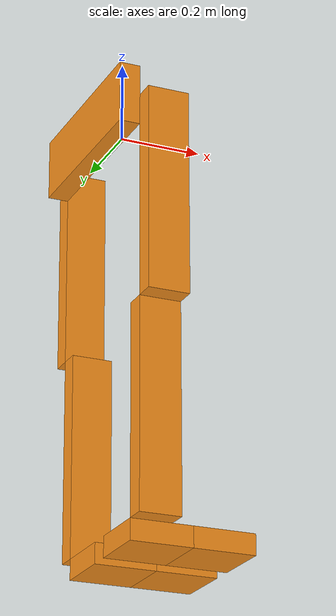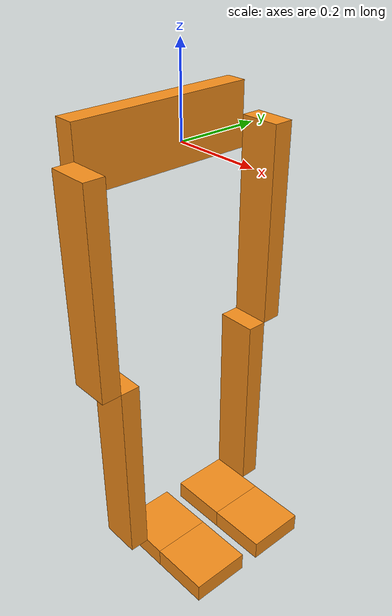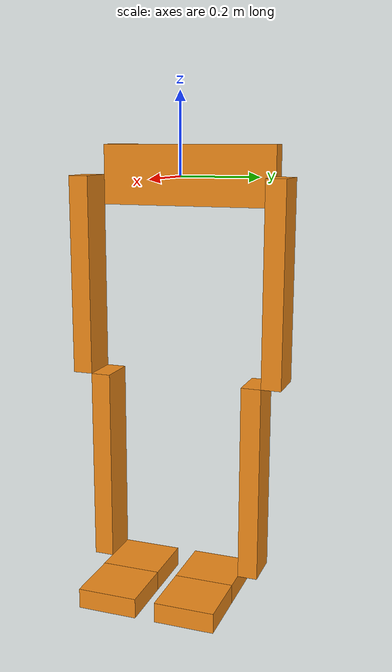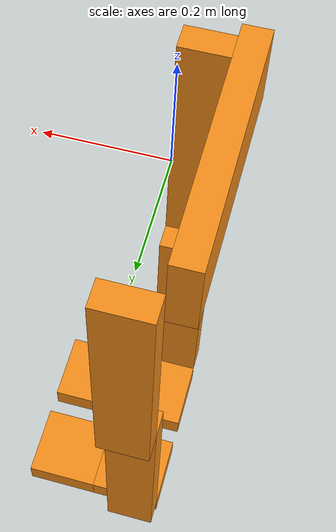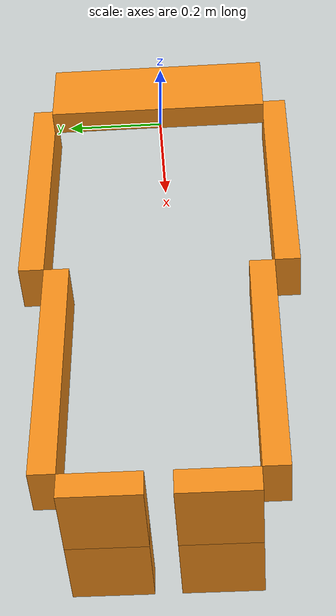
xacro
<?xml version="1.0"?>
<robot name="exoskeleton" xmlns:xacro="http://www.ros.org/wiki/xacro">
  <xacro:property name="PI" value="3.1415926535897931"/>
  <!--waist property-->
  <xacro:property name="waist_mass" value="10" />
  <xacro:property name="waist_length" value="0.45" />
  <xacro:property name="waist_width" value="0.15" />
  <xacro:property name="waist_height" value="0.05" />
  <!--up property-->
  <xacro:property name="up_mass" value="8" />
  <xacro:property name="up_length" value="0.5" />
  <xacro:property name="up_width" value="0.1" />
  <xacro:property name="up_height" value="0.05" />
  <xacro:property name="up_effort" value="500" />
  <xacro:property name="up_lower" value="${-PI/2}" />
  <xacro:property name="up_upper" value="${PI/6}" />
  <xacro:property name="up_maxvel" value="${2*PI}" />
  <!--down property-->
  <xacro:property name="down_mass" value="3" />
  <xacro:property name="down_length" value="0.5" />
  <xacro:property name="down_width" value="0.1" />
  <xacro:property name="down_height" value="0.05" />
  <xacro:property name="down_effort" value="1500" />
  <xacro:property name="down_lower" value="0" />
  <xacro:property name="down_upper" value="${PI*2/3}" />
  <xacro:property name="down_maxvel" value="${PI*3}" />
  <!--foot property-->
  <xacro:property name="foot_back_mass" value="1" />
  <xacro:property name="foot_front_mass" value="0.5" />
  <xacro:property name="foot_back_length" value="0.15" />
  <xacro:property name="foot_front_length" value="0.15" />
  <xacro:property name="foot_width" value="0.15" />
  <xacro:property name="foot_height" value="0.05" />
  <xacro:property name="foot_effort" value="500" />
  <xacro:property name="foot_front_lower" value="${-PI/3}" />
  <xacro:property name="foot_front_upper" value="0" />
  <xacro:property name="foot_back_lower" value="${-PI/18}" />
  <xacro:property name="foot_back_upper" value="${PI/6}" />
  <xacro:property name="foot_maxvel" value="${PI}" />

  <!-- Import all Gazebo-customization elements, including Gazebo colors -->
  <xacro:include filename="$(find exoskeleton)/urdf/robot.gazebo" />

  <link name="waist_link">
    <collision>
      <origin xyz="${-waist_height/2-up_width/2} 0 0" rpy="0 0 0"/>
      <geometry>
	    <box size="${waist_height} ${waist_length} ${waist_width}"/>
      </geometry>
    </collision>
    <visual>
      <origin xyz="${-waist_height/2-up_width/2} 0 0" rpy="0 0 0"/>
      <geometry>
	    <box size="${waist_height} ${waist_length} ${waist_width}"/>
      </geometry>
      <material name="orange"/>
    </visual>
    <inertial>
      <origin xyz="${-waist_height/2-up_width/2} 0 0" rpy="0 0 0"/>
      <mass value="${waist_mass}"/>
      <inertia
	  ixx="${waist_mass / 12.0 * (waist_length*waist_length + waist_width*waist_width)}" ixy="0.0" ixz="0.0"
	  iyy="${waist_mass / 12.0 * (waist_height*waist_height + waist_width*waist_width)}" iyz="0.0"
	  izz="${waist_mass / 12.0 * (waist_height*waist_height + waist_length*waist_length)}"/>
    </inertial>
  </link>

  <joint name="LU_joint" type="revolute">
    <limit
        velocity="${up_maxvel}" effort="${up_effort}" lower="${up_lower}" upper="${up_upper}" />
    <parent link="waist_link"/>
    <child link="LU_link"/>
    <origin xyz="0 ${waist_length/2} 0" rpy="0 0 0"/>
    <axis xyz="0 1 0"/>
    <dynamics damping="0.7"/>
  </joint>
  <link name="LU_link">
    <collision>
      <origin xyz="0 ${up_height/2} ${-(up_length/2)}" rpy="0 0 0"/>
      <geometry>
	    <box size="${up_width} ${up_height} ${up_length}"/>
      </geometry>
    </collision>
    <visual>
      <origin xyz="0 ${up_height/2} ${-(up_length/2)}" rpy="0 0 0"/>
      <geometry>
	    <box size="${up_width} ${up_height} ${up_length}"/>
      </geometry>
      <material name="orange"/>
    </visual>
    <inertial>
      <origin xyz="0 ${up_height/2} ${-(up_length/2)}" rpy="0 0 0"/>
      <mass value="${up_mass}"/>
      <inertia
	  ixx="${up_mass / 12.0 * (up_height*up_height + up_length*up_length)}" ixy="0.0" ixz="0.0"
	  iyy="${up_mass / 12.0 * (up_width*up_width + up_length*up_length)}" iyz="0.0"
	  izz="${up_mass / 12.0 * (up_width*up_width + up_height*up_height)}"/>
    </inertial>
  </link>

  <joint name="RU_joint" type="revolute">
    <limit
        velocity="${up_maxvel}"  effort="${up_effort}" lower="${up_lower}" upper="${up_upper}" />
    <parent link="waist_link"/>
    <child link="RU_link"/>
    <origin xyz="0 ${-(waist_length/2)} 0" rpy="0 0 0"/>
    <axis xyz="0 1 0"/>
    <dynamics damping="0.7"/>
  </joint>
  <link name="RU_link">
    <collision>
      <origin xyz="0 ${-up_height/2} ${-(up_length/2)}" rpy="0 0 0"/>
      <geometry>
	    <box size="${up_width} ${up_height} ${up_length}"/>
      </geometry>
    </collision>
    <visual>
      <origin xyz="0 ${-up_height/2} ${-(up_length/2)}" rpy="0 0 0"/>
      <geometry>
	    <box size="${up_width} ${up_height} ${up_length}"/>
      </geometry>
      <material name="orange"/>
    </visual>
    <inertial>
      <origin xyz="0 ${-up_height/2} ${-(up_length/2)}" rpy="0 0 0"/>
      <mass value="${up_mass}"/>
      <inertia
	  ixx="${up_mass / 12.0 * (up_height*up_height + up_length*up_length)}" ixy="0.0" ixz="0.0"
	  iyy="${up_mass / 12.0 * (up_width*up_width + up_length*up_length)}" iyz="0.0"
	  izz="${up_mass / 12.0 * (up_width*up_width + up_height*up_height)}"/>
    </inertial>
  </link>

  <joint name="LD_joint" type="revolute">
    <limit
        velocity="${down_maxvel}"  effort="${down_effort}" lower="${down_lower}" upper="${down_upper}" />
    <parent link="LU_link"/>
    <child link="LD_link"/>
    <origin xyz="0 0 ${-up_length}" rpy="0 0 0"/>
    <axis xyz="0 1 0"/>
    <dynamics damping="0.7"/>
  </joint>
  <link name="LD_link">
    <collision>
      <origin xyz="0 ${-down_height/2} ${-(down_length/2)}" rpy="0 0 0"/>
      <geometry>
	    <box size="${down_width} ${down_height} ${down_length}"/>
      </geometry>
    </collision>
    <visual>
      <origin xyz="0 ${-down_height/2} ${-(down_length/2)}" rpy="0 0 0"/>
      <geometry>
	    <box size="${down_width} ${down_height} ${down_length}"/>
      </geometry>
      <material name="orange"/>
    </visual>
    <inertial>
      <origin xyz="0 ${-down_height/2} ${-(down_length/2)}" rpy="0 0 0"/>
      <mass value="${down_mass}"/>
      <inertia
	  ixx="${down_mass / 12.0 * (down_height*down_height + down_length*down_length)}" ixy="0.0" ixz="0.0"
	  iyy="${down_mass / 12.0 * (down_width*down_width + down_length*down_length)}" iyz="0.0"
	  izz="${down_mass / 12.0 * (down_width*down_width + down_height*down_height)}"/>
    </inertial>
  </link>

  <joint name="RD_joint" type="revolute">
    <limit
       velocity="${down_maxvel}" effort="${down_effort}" lower="${down_lower}" upper="${down_upper}" />
    <parent link="RU_link"/>
    <child link="RD_link"/>
    <origin xyz="0 0 ${-up_length}" rpy="0 0 0"/>
    <axis xyz="0 1 0"/>
    <dynamics damping="0.7"/>
  </joint>
  <link name="RD_link">
    <collision>
      <origin xyz="0 ${down_height/2} ${-(down_length/2)}" rpy="0 0 0"/>
      <geometry>
	    <box size="${down_width} ${down_height} ${down_length}"/>
      </geometry>
    </collision>
    <visual>
      <origin xyz="0 ${down_height/2} ${-(down_length/2)}" rpy="0 0 0"/>
      <geometry>
	    <box size="${down_width} ${down_height} ${down_length}"/>
      </geometry>
      <material name="orange"/>
    </visual>
    <inertial>
      <origin xyz="0 ${down_height/2} ${-(down_length/2)}" rpy="0 0 0"/>
      <mass value="${down_mass}"/>
      <inertia
	  ixx="${down_mass / 12.0 * (down_height*down_height + down_length*down_length)}" ixy="0.0" ixz="0.0"
	  iyy="${down_mass / 12.0 * (down_width*down_width + down_length*down_length)}" iyz="0.0"
	  izz="${down_mass / 12.0 * (down_width*down_width + down_height*down_height)}"/>
    </inertial>
  </link>

  <joint name="LF_joint" type="revolute">
    <limit
       velocity="${foot_maxvel}" effort="${foot_effort}" lower="${foot_back_lower}" upper="${foot_back_upper}" />
    <parent link="LD_link"/>
    <child link="LF_link"/>
    <origin xyz="0 ${-down_height} ${-down_length}" rpy="0 0 0"/>
    <axis xyz="0 1 0"/>
    <dynamics damping="0.7"/>
  </joint>
  <link name="LF_link">
    <gazebo>
        <self_collide>1</self_collide>
    </gazebo>
    <collision>
      <origin xyz="${foot_back_length/2-down_width/2} ${-foot_width/2} ${-foot_height/2}" rpy="0 0 0"/>
      <geometry>
	    <box size="${foot_back_length} ${foot_width} ${foot_height}"/>
      </geometry>
    </collision>
    <visual>
      <origin xyz="${foot_back_length/2-down_width/2} ${-foot_width/2} ${-foot_height/2}" rpy="0 0 0"/>
      <geometry>
	    <box size="${foot_back_length} ${foot_width} ${foot_height}"/>
      </geometry>
      <material name="orange"/>
    </visual>
    <inertial>
      <origin xyz="${foot_back_length/2-down_width/2} ${-foot_width/2} ${-foot_height/2}" rpy="0 0 0"/>
      <mass value="${foot_back_mass}"/>
      <inertia
	  ixx="${foot_back_mass / 12.0 * (foot_width*foot_width + foot_height*foot_height)}" ixy="0.0" ixz="0.0"
	  iyy="${foot_back_mass / 12.0 * (foot_back_length*foot_back_length + foot_height*foot_height)}" iyz="0.0"
	  izz="${foot_back_mass / 12.0 * (foot_back_length*foot_back_length + foot_width*foot_width)}"/>
    </inertial>
  </link>

  <joint name="RF_joint" type="revolute">
    <limit
       velocity="${foot_maxvel}" effort="${foot_effort}" lower="${foot_back_lower}" upper="${foot_back_upper}" />
    <parent link="RD_link"/>
    <child link="RF_link"/>
    <origin xyz="0 ${down_height} ${-down_length}" rpy="0 0 0"/>
    <axis xyz="0 1 0"/>
    <dynamics damping="0.7"/>
  </joint>
  <link name="RF_link">
    <collision>
      <origin xyz="${foot_back_length/2-down_width/2} ${foot_width/2} ${-foot_height/2}" rpy="0 0 0"/>
      <geometry>
	    <box size="${foot_back_length} ${foot_width} ${foot_height}"/>
      </geometry>
    </collision>
    <visual>
      <origin xyz="${foot_back_length/2-down_width/2} ${foot_width/2} ${-foot_height/2}" rpy="0 0 0"/>
      <geometry>
	    <box size="${foot_back_length} ${foot_width} ${foot_height}"/>
      </geometry>
      <material name="orange"/>
    </visual>
    <inertial>
      <origin xyz="${foot_back_length/2-down_width/2} ${foot_width/2} ${-foot_height/2}" rpy="0 0 0"/>
      <mass value="${foot_back_mass}"/>
      <inertia
	  ixx="${foot_back_mass / 12.0 * (foot_width*foot_width + foot_height*foot_height)}" ixy="0.0" ixz="0.0"
	  iyy="${foot_back_mass / 12.0 * (foot_back_length*foot_back_length + foot_height*foot_height)}" iyz="0.0"
	  izz="${foot_back_mass / 12.0 * (foot_back_length*foot_back_length + foot_width*foot_width)}"/>
    </inertial>
  </link>

  <joint name="LFF_joint" type="revolute">
    <limit
       velocity="${foot_maxvel}" effort="${foot_effort}" lower="${foot_front_lower}" upper="${foot_front_upper}" />
    <parent link="LF_link"/>
    <child link="LFF_link"/>
    <origin xyz="${foot_back_length-down_width/2} 0 0" rpy="0 0 0"/>
    <axis xyz="0 1 0"/>
    <dynamics damping="0.7"/>
  </joint>

  <link name="LFF_link">
    <gazebo>
        <self_collide>1</self_collide>
    </gazebo>
    <collision>
      <origin xyz="${foot_front_length/2} ${-foot_width/2} ${-foot_height/2}" rpy="0 0 0"/>
      <geometry>
	    <box size="${foot_front_length} ${foot_width} ${foot_height}"/>
      </geometry>
    </collision>
    <visual>
      <origin xyz="${foot_front_length/2} ${-foot_width/2} ${-foot_height/2}" rpy="0 0 0"/>
      <geometry>
	    <box size="${foot_front_length} ${foot_width} ${foot_height}"/>
      </geometry>
      <material name="orange"/>
    </visual>
    <inertial>
      <origin xyz="${foot_front_length/2} ${-foot_width/2} ${-foot_height/2}" rpy="0 0 0"/>
      <mass value="${foot_front_mass}"/>
      <inertia
	  ixx="${foot_front_mass / 12.0 * (foot_width*foot_width + foot_height*foot_height)}" ixy="0.0" ixz="0.0"
	  iyy="${foot_front_mass / 12.0 * (foot_front_length*foot_front_length + foot_height*foot_height)}" iyz="0.0"
	  izz="${foot_front_mass / 12.0 * (foot_front_length*foot_front_length + foot_width*foot_width)}"/>
    </inertial>
  </link>

  <joint name="RFF_joint" type="revolute">
    <limit
       velocity="${foot_maxvel}" effort="${foot_effort}" lower="${foot_front_lower}" upper="${foot_front_upper}" />
    <parent link="RF_link"/>
    <child link="RFF_link"/>
    <origin xyz="${foot_back_length-down_width/2} 0 0" rpy="0 0 0"/>
    <axis xyz="0 1 0"/>
    <dynamics damping="0.7"/>
  </joint>

  <link name="RFF_link">
    <gazebo>
        <self_collide>1</self_collide>
    </gazebo>
    <collision>
      <origin xyz="${foot_front_length/2} ${foot_width/2} ${-foot_height/2}" rpy="0 0 0"/>
      <geometry>
	    <box size="${foot_front_length} ${foot_width} ${foot_height}"/>
      </geometry>
    </collision>
    <visual>
      <origin xyz="${foot_front_length/2} ${foot_width/2} ${-foot_height/2}" rpy="0 0 0"/>
      <geometry>
	    <box size="${foot_front_length} ${foot_width} ${foot_height}"/>
      </geometry>
      <material name="orange"/>
    </visual>
    <inertial>
      <origin xyz="${foot_front_length/2} ${foot_width/2} ${-foot_height/2}" rpy="0 0 0"/>
      <mass value="${foot_front_mass}"/>
      <inertia
	  ixx="${foot_front_mass / 12.0 * (foot_width*foot_width + foot_height*foot_height)}" ixy="0.0" ixz="0.0"
	  iyy="${foot_front_mass / 12.0 * (foot_front_length*foot_front_length + foot_height*foot_height)}" iyz="0.0"
	  izz="${foot_front_mass / 12.0 * (foot_front_length*foot_front_length + foot_width*foot_width)}"/>
    </inertial>
  </link>

  <!--transmission staff for effort joint-->
  <transmission name="tran_LU">
    <type>transmission_interface/SimpleTransmission</type>
    <joint name="LU_joint">
      <hardwareInterface>hardware_interface/EffortJointInterface</hardwareInterface>
    </joint>
    <actuator name="motor_LU">
      <hardwareInterface>hardware_interface/EffortJointInterface</hardwareInterface>
      <mechanicalReduction>1</mechanicalReduction>
    </actuator>
  </transmission>

  <transmission name="tran_RU">
    <type>transmission_interface/SimpleTransmission</type>
    <joint name="RU_joint">
      <hardwareInterface>hardware_interface/EffortJointInterface</hardwareInterface>
    </joint>
    <actuator name="motor_RU">
      <hardwareInterface>hardware_interface/EffortJointInterface</hardwareInterface>
      <mechanicalReduction>1</mechanicalReduction>
    </actuator>
  </transmission>

  <transmission name="tran_LD">
    <type>transmission_interface/SimpleTransmission</type>
    <joint name="LD_joint">
      <hardwareInterface>hardware_interface/EffortJointInterface</hardwareInterface>
    </joint>
    <actuator name="motor_LD">
      <hardwareInterface>hardware_interface/EffortJointInterface</hardwareInterface>
      <mechanicalReduction>1</mechanicalReduction>
    </actuator>
  </transmission>

  <transmission name="tran_RD">
    <type>transmission_interface/SimpleTransmission</type>
    <joint name="RD_joint">
      <hardwareInterface>hardware_interface/EffortJointInterface</hardwareInterface>
    </joint>
    <actuator name="motor_RD">
      <hardwareInterface>hardware_interface/EffortJointInterface</hardwareInterface>
      <mechanicalReduction>1</mechanicalReduction>
    </actuator>
  </transmission>

  <transmission name="tran_LF">
    <type>transmission_interface/SimpleTransmission</type>
    <joint name="LF_joint">
      <hardwareInterface>hardware_interface/EffortJointInterface</hardwareInterface>
    </joint>
    <actuator name="motor_LF">
      <hardwareInterface>hardware_interface/EffortJointInterface</hardwareInterface>
      <mechanicalReduction>1</mechanicalReduction>
    </actuator>
  </transmission>

  <transmission name="tran_RF">
    <type>transmission_interface/SimpleTransmission</type>
    <joint name="RF_joint">
      <hardwareInterface>hardware_interface/EffortJointInterface</hardwareInterface>
    </joint>
    <actuator name="motor_RF">
      <hardwareInterface>hardware_interface/EffortJointInterface</hardwareInterface>
      <mechanicalReduction>1</mechanicalReduction>
    </actuator>
  </transmission>
</robot>
